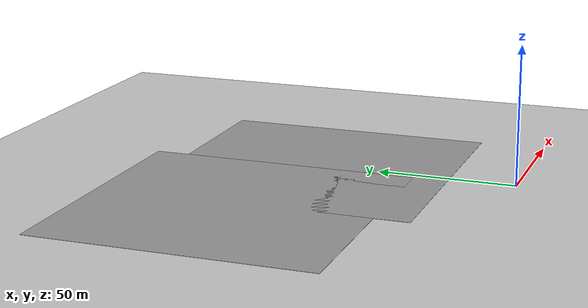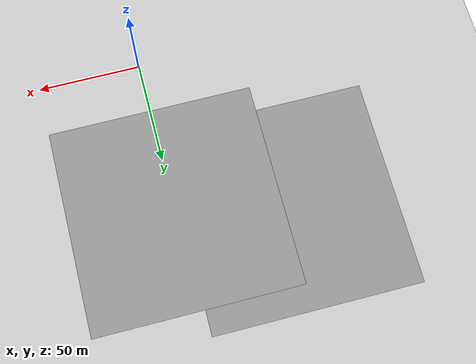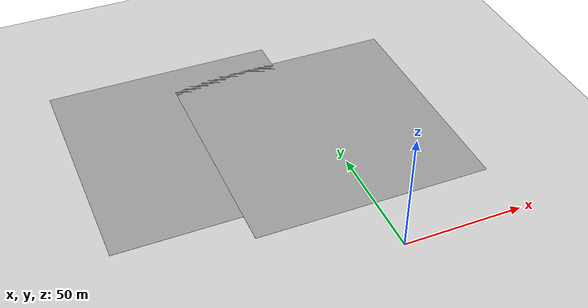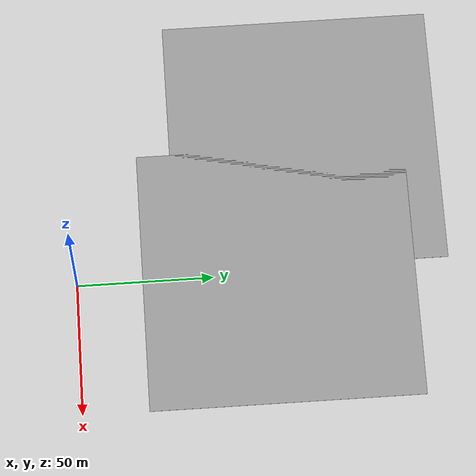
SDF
<sdf version="1.6">
 <world name="default">
  <model name="ground_plane">
   <static>1</static>
   <link name="link">
    <collision name="collision">
     <geometry><plane><normal>0 0 1</normal><size>100 100</size></plane></geometry>
     <surface><friction><ode><mu>100</mu><mu2>50</mu2></ode></friction></surface>
    </collision>
    <visual name="visual">
     <cast_shadows>0</cast_shadows>
     <geometry><plane><normal>0 0 1</normal><size>100 100</size></plane></geometry>
     <material>
      <script><uri>file://media/materials/scripts/gazebo.material</uri><name>Gazebo/Grey</name></script>
     </material>
    </visual>
   </link>
  </model>
  <model name="ground_plane_0">
   <static>1</static>
   <link name="link">
    <collision name="collision">
     <geometry><plane><normal>0 0 1</normal><size>100 100</size></plane></geometry>
     <surface><friction><ode><mu>100</mu><mu2>50</mu2></ode></friction></surface>
    </collision>
    <visual name="visual">
     <cast_shadows>0</cast_shadows>
     <geometry><plane><normal>0 0 1</normal><size>100 100</size></plane></geometry>
     <material>
      <script><uri>file://media/materials/scripts/gazebo.material</uri><name>Gazebo/Grey</name></script>
     </material>
    </visual>
   </link>
   <pose>0 74 0 0 -0 0</pose>
  </model>
  <model name="ground_plane_4">
   <static>1</static>
   <link name="link">
    <collision name="collision">
     <geometry><plane><normal>0 0 1</normal><size>100 100</size></plane></geometry>
     <surface><friction><ode><mu>100</mu><mu2>50</mu2></ode></friction></surface>
    </collision>
    <visual name="visual">
     <cast_shadows>0</cast_shadows>
     <geometry><plane><normal>0 0 1</normal><size>100 100</size></plane></geometry>
     <material>
      <script><uri>file://media/materials/scripts/gazebo.material</uri><name>Gazebo/Grey</name></script>
     </material>
    </visual>
   </link>
   <pose>-52.5239 86.437 0 0 -0 0</pose>
  </model>
 </world>
</sdf>
